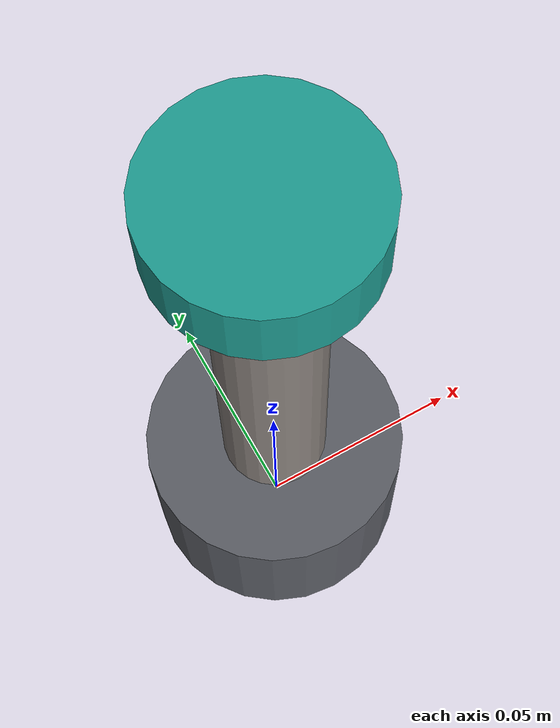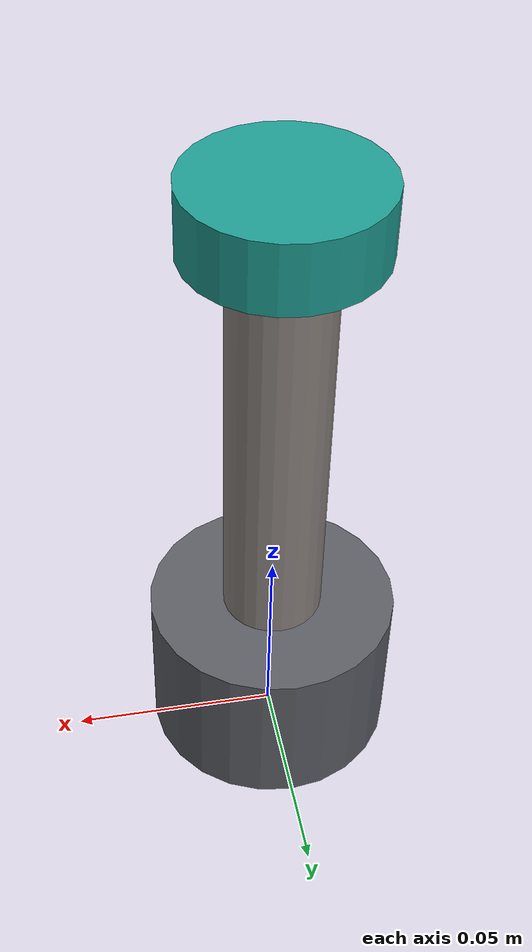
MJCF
<mujoco model="suction"><compiler angle="radian"/><worldbody><body name="mount">
<geom type="cylinder" size="0.03 0.02" pos="0 0 0.02" rgba="0.36 0.37 0.40 1" mass="0.3"/>
<geom type="cylinder" size="0.012 0.05" pos="0 0 0.09" rgba="0.55 0.52 0.50 1" mass="0.1"/>
<geom name="cup" type="cylinder" size="0.022 0.008" pos="0 0 0.148" rgba="0.12 0.62 0.58 1" mass="0.02" condim="4" friction="1.2 0.02 0.001"/>
<site name="cup_site" pos="0 0 0.156" size="0.003" rgba="0 0 0 0"/></body></worldbody></mujoco>
